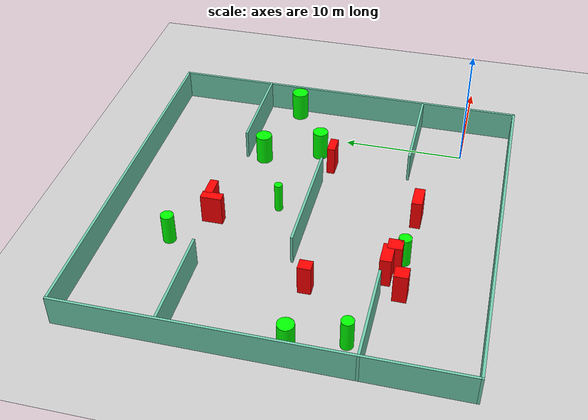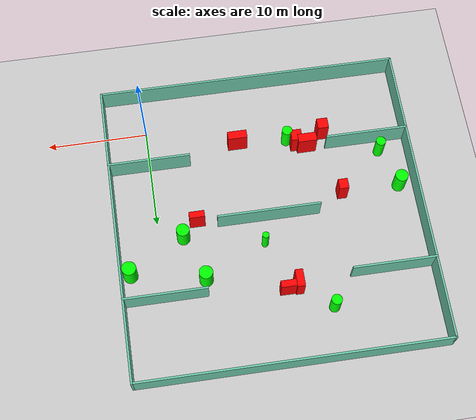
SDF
<sdf version="1.7">
 <world name="default">
  <light name="sun" type="directional">
   <pose>0 0 10 0 -0 0</pose>
   <diffuse>0.8 0.8 0.8 1</diffuse>
   <specular>0.2 0.2 0.2 1</specular>
   <attenuation>
    <range>1000</range>
    <constant>0.9</constant>
    <linear>0.01</linear>
    <quadratic>0.001</quadratic>
   </attenuation>
   <direction>-0.5 0.1 -0.9</direction>
   <spot><inner_angle>0</inner_angle><outer_angle>0</outer_angle><falloff>0</falloff></spot>
  </light>
  <model name="ground_plane">
   <static>1</static>
   <link name="link">
    <collision name="collision">
     <geometry><plane><normal>0 0 1</normal><size>100 100</size></plane></geometry>
     <surface>
      <contact><collide_bitmask>65535</collide_bitmask></contact>
      <friction><ode><mu>100</mu><mu2>50</mu2></ode></friction>
     </surface>
    </collision>
    <visual name="visual">
     <cast_shadows>0</cast_shadows>
     <geometry><plane><normal>0 0 1</normal><size>100 100</size></plane></geometry>
     <material>
      <script><uri>file://media/materials/scripts/gazebo.material</uri><name>Gazebo/Grey</name></script>
     </material>
    </visual>
   </link>
  </model>
  <gravity>0 0 -9.8</gravity>
  <magnetic_field>6e-06 2.3e-05 -4.2e-05</magnetic_field>
  <atmosphere type="adiabatic"/>
  <physics type="ode">
   <max_step_size>0.001</max_step_size>
   <real_time_factor>1</real_time_factor>
   <real_time_update_rate>1000</real_time_update_rate>
  </physics>
  <scene><ambient>0.4 0.4 0.4 1</ambient><background>0.7 0.7 0.7 1</background><shadows>1</shadows></scene>
  <spherical_coordinates>
   <surface_model>EARTH_WGS84</surface_model>
   <latitude_deg>0</latitude_deg>
   <longitude_deg>0</longitude_deg>
   <elevation>0</elevation>
   <heading_deg>0</heading_deg>
  </spherical_coordinates>
  <model name="my_base_walls">
   <link name="Wall_10">
    <collision name="Wall_10_Collision">
     <geometry><box><size>8.2 0.2 2.5</size></box></geometry>
     <pose>0 0 1.25 0 -0 0</pose>
    </collision>
    <visual name="Wall_10_Visual">
     <pose>0 0 1.25 0 -0 0</pose>
     <geometry><box><size>8.2 0.2 2.5</size></box></geometry>
     <material>
      <script><uri>file://media/materials/scripts/gazebo.material</uri><name>Gazebo/Grey</name></script>
      <ambient>0.435294 0.796078 0.67451 1</ambient>
     </material>
     <meta><layer>0</layer></meta>
    </visual>
    <pose>-11 -7 0 0 -0 0</pose>
   </link>
   <link name="Wall_12">
    <collision name="Wall_12_Collision">
     <geometry><box><size>8.2 0.2 2.5</size></box></geometry>
     <pose>0 0 1.25 0 -0 0</pose>
    </collision>
    <visual name="Wall_12_Visual">
     <pose>0 0 1.25 0 -0 0</pose>
     <geometry><box><size>8.2 0.2 2.5</size></box></geometry>
     <material>
      <script><uri>file://media/materials/scripts/gazebo.material</uri><name>Gazebo/Grey</name></script>
      <ambient>0.435294 0.796078 0.67451 1</ambient>
     </material>
     <meta><layer>0</layer></meta>
    </visual>
    <pose>-11 7 0 0 -0 0</pose>
   </link>
   <link name="Wall_14">
    <collision name="Wall_14_Collision">
     <geometry><box><size>8.2 0.2 2.5</size></box></geometry>
     <pose>0 0 1.25 0 -0 0</pose>
    </collision>
    <visual name="Wall_14_Visual">
     <pose>0 0 1.25 0 -0 0</pose>
     <geometry><box><size>8.2 0.2 2.5</size></box></geometry>
     <material>
      <script><uri>file://media/materials/scripts/gazebo.material</uri><name>Gazebo/Grey</name></script>
      <ambient>0.435294 0.796078 0.67451 1</ambient>
     </material>
     <meta><layer>0</layer></meta>
    </visual>
    <pose>11 7 0 0 -0 3.14159</pose>
   </link>
   <link name="Wall_16">
    <collision name="Wall_16_Collision">
     <geometry><box><size>10.2 0.2 2.5</size></box></geometry>
     <pose>0 0 1.25 0 -0 0</pose>
    </collision>
    <visual name="Wall_16_Visual">
     <pose>0 0 1.25 0 -0 0</pose>
     <geometry><box><size>10.2 0.2 2.5</size></box></geometry>
     <material>
      <script><uri>file://media/materials/scripts/gazebo.material</uri><name>Gazebo/Grey</name></script>
      <ambient>0.435294 0.796078 0.67451 1</ambient>
     </material>
     <meta><layer>0</layer></meta>
    </visual>
    <pose>0 0 0 0 -0 3.14159</pose>
   </link>
   <link name="Wall_2">
    <collision name="Wall_2_Collision">
     <geometry><box><size>30.2 0.2 2.5</size></box></geometry>
     <pose>0 0 1.25 0 -0 0</pose>
    </collision>
    <visual name="Wall_2_Visual">
     <pose>0 0 1.25 0 -0 0</pose>
     <geometry><box><size>30.2 0.2 2.5</size></box></geometry>
     <material>
      <script><uri>file://media/materials/scripts/gazebo.material</uri><name>Gazebo/Grey</name></script>
      <ambient>0.435294 0.796078 0.67451 1</ambient>
     </material>
     <meta><layer>0</layer></meta>
    </visual>
    <pose>0 -15 0 0 -0 3.14159</pose>
   </link>
   <link name="Wall_3">
    <collision name="Wall_3_Collision">
     <geometry><box><size>30.2 0.2 2.5</size></box></geometry>
     <pose>0 0 1.25 0 -0 0</pose>
    </collision>
    <visual name="Wall_3_Visual">
     <pose>0 0 1.25 0 -0 0</pose>
     <geometry><box><size>30.2 0.2 2.5</size></box></geometry>
     <material>
      <script><uri>file://media/materials/scripts/gazebo.material</uri><name>Gazebo/Grey</name></script>
      <ambient>0.435294 0.796078 0.67451 1</ambient>
     </material>
     <meta><layer>0</layer></meta>
    </visual>
    <pose>-15 0 0 0 -0 1.5708</pose>
   </link>
   <link name="Wall_4">
    <collision name="Wall_4_Collision">
     <geometry><box><size>30.2 0.2 2.5</size></box></geometry>
     <pose>0 0 1.25 0 -0 0</pose>
    </collision>
    <visual name="Wall_4_Visual">
     <pose>0 0 1.25 0 -0 0</pose>
     <geometry><box><size>30.2 0.2 2.5</size></box></geometry>
     <material>
      <script><uri>file://media/materials/scripts/gazebo.material</uri><name>Gazebo/Grey</name></script>
      <ambient>0.435294 0.796078 0.67451 1</ambient>
     </material>
     <meta><layer>0</layer></meta>
    </visual>
    <pose>0 15 0 0 -0 0</pose>
   </link>
   <link name="Wall_6">
    <collision name="Wall_6_Collision">
     <geometry><box><size>30.2 0.2 2.5</size></box></geometry>
     <pose>0 0 1.25 0 -0 0</pose>
    </collision>
    <visual name="Wall_6_Visual">
     <pose>0 0 1.25 0 -0 0</pose>
     <geometry><box><size>30.2 0.2 2.5</size></box></geometry>
     <material>
      <script><uri>file://media/materials/scripts/gazebo.material</uri><name>Gazebo/Grey</name></script>
      <ambient>0.435294 0.796078 0.67451 1</ambient>
     </material>
     <meta><layer>0</layer></meta>
    </visual>
    <pose>15 0 0 0 -0 1.5708</pose>
   </link>
   <link name="Wall_8">
    <collision name="Wall_8_Collision">
     <geometry><box><size>8.2 0.2 2.5</size></box></geometry>
     <pose>0 0 1.25 0 -0 0</pose>
    </collision>
    <visual name="Wall_8_Visual">
     <pose>0 0 1.25 0 -0 0</pose>
     <geometry><box><size>8.2 0.2 2.5</size></box></geometry>
     <material>
      <script><uri>file://media/materials/scripts/gazebo.material</uri><name>Gazebo/Grey</name></script>
      <ambient>0.435294 0.796078 0.67451 1</ambient>
     </material>
     <meta><layer>0</layer></meta>
    </visual>
    <pose>11 -7 0 0 -0 3.14159</pose>
   </link>
   <static>1</static>
   <pose>-11 11 0 0 -0 0</pose>
  </model>
  <model name="cylinder1">
   <static>1</static>
   <link name="link">
    <inertial>
     <mass>1</mass>
     <inertia><ixx>0.5</ixx><ixy>0</ixy><ixz>0</ixz><iyy>0.5</iyy><iyz>0</iyz><izz>1</izz></inertia>
    </inertial>
    <collision name="collision">
     <geometry><cylinder><radius>0.636498720481179</radius><length>2.5</length></cylinder></geometry>
    </collision>
    <visual name="visual">
     <geometry><cylinder><radius>0.636498720481179</radius><length>2.5</length></cylinder></geometry>
     <material>
      <ambient>0 1 0 1</ambient>
      <diffuse>0 1 0 1</diffuse>
      <specular>0.1 0.1 0.1 1</specular>
      <emissive>0 0 0 0</emissive>
     </material>
    </visual>
   </link>
   <pose>-2.411216339836688 11.914152871384841 1.25 0 0 0</pose>
  </model>
  <model name="cylinder2">
   <static>1</static>
   <link name="link">
    <inertial>
     <mass>1</mass>
     <inertia><ixx>0.5</ixx><ixy>0</ixy><ixz>0</ixz><iyy>0.5</iyy><iyz>0</iyz><izz>1</izz></inertia>
    </inertial>
    <collision name="collision">
     <geometry><cylinder><radius>0.3259236256138684</radius><length>2.5</length></cylinder></geometry>
    </collision>
    <visual name="visual">
     <geometry><cylinder><radius>0.3259236256138684</radius><length>2.5</length></cylinder></geometry>
     <material>
      <ambient>0 1 0 1</ambient>
      <diffuse>0 1 0 1</diffuse>
      <specular>0.1 0.1 0.1 1</specular>
      <emissive>0 0 0 0</emissive>
     </material>
    </visual>
   </link>
   <pose>-10.242868053771627 13.568224415973805 1.25 0 0 0</pose>
  </model>
  <model name="cylinder3">
   <static>1</static>
   <link name="link">
    <inertial>
     <mass>1</mass>
     <inertia><ixx>0.5</ixx><ixy>0</ixy><ixz>0</ixz><iyy>0.5</iyy><iyz>0</iyz><izz>1</izz></inertia>
    </inertial>
    <collision name="collision">
     <geometry><cylinder><radius>0.5176408508079428</radius><length>2.5</length></cylinder></geometry>
    </collision>
    <visual name="visual">
     <geometry><cylinder><radius>0.5176408508079428</radius><length>2.5</length></cylinder></geometry>
     <material>
      <ambient>0 1 0 1</ambient>
      <diffuse>0 1 0 1</diffuse>
      <specular>0.1 0.1 0.1 1</specular>
      <emissive>0 0 0 0</emissive>
     </material>
    </visual>
   </link>
   <pose>-15.800730716564015 20.89428741965672 1.25 0 0 0</pose>
  </model>
  <model name="cylinder4">
   <static>1</static>
   <link name="link">
    <inertial>
     <mass>1</mass>
     <inertia><ixx>0.5</ixx><ixy>0</ixy><ixz>0</ixz><iyy>0.5</iyy><iyz>0</iyz><izz>1</izz></inertia>
    </inertial>
    <collision name="collision">
     <geometry><cylinder><radius>0.4845698267996583</radius><length>2.5</length></cylinder></geometry>
    </collision>
    <visual name="visual">
     <geometry><cylinder><radius>0.4845698267996583</radius><length>2.5</length></cylinder></geometry>
     <material>
      <ambient>0 1 0 1</ambient>
      <diffuse>0 1 0 1</diffuse>
      <specular>0.1 0.1 0.1 1</specular>
      <emissive>0 0 0 0</emissive>
     </material>
    </visual>
   </link>
   <pose>-23.205842157219614 5.273185494477175 1.25 0 0 0</pose>
  </model>
  <model name="cylinder5">
   <static>1</static>
   <link name="link">
    <inertial>
     <mass>1</mass>
     <inertia><ixx>0.5</ixx><ixy>0</ixy><ixz>0</ixz><iyy>0.5</iyy><iyz>0</iyz><izz>1</izz></inertia>
    </inertial>
    <collision name="collision">
     <geometry><cylinder><radius>0.6967206470326086</radius><length>2.5</length></cylinder></geometry>
    </collision>
    <visual name="visual">
     <geometry><cylinder><radius>0.6967206470326086</radius><length>2.5</length></cylinder></geometry>
     <material>
      <ambient>0 1 0 1</ambient>
      <diffuse>0 1 0 1</diffuse>
      <specular>0.1 0.1 0.1 1</specular>
      <emissive>0 0 0 0</emissive>
     </material>
    </visual>
   </link>
   <pose>3.1174313810031435 15.065133735084071 1.25 0 0 0</pose>
  </model>
  <model name="cylinder6">
   <static>1</static>
   <link name="link">
    <inertial>
     <mass>1</mass>
     <inertia><ixx>0.5</ixx><ixy>0</ixy><ixz>0</ixz><iyy>0.5</iyy><iyz>0</iyz><izz>1</izz></inertia>
    </inertial>
    <collision name="collision">
     <geometry><cylinder><radius>0.6359386333407981</radius><length>2.5</length></cylinder></geometry>
    </collision>
    <visual name="visual">
     <geometry><cylinder><radius>0.6359386333407981</radius><length>2.5</length></cylinder></geometry>
     <material>
      <ambient>0 1 0 1</ambient>
      <diffuse>0 1 0 1</diffuse>
      <specular>0.1 0.1 0.1 1</specular>
      <emissive>0 0 0 0</emissive>
     </material>
    </visual>
   </link>
   <pose>-24.476697213895324 9.265067049409915 1.25 0 0 0</pose>
  </model>
  <model name="cylinder7">
   <static>1</static>
   <link name="link">
    <inertial>
     <mass>1</mass>
     <inertia><ixx>0.5</ixx><ixy>0</ixy><ixz>0</ixz><iyy>0.5</iyy><iyz>0</iyz><izz>1</izz></inertia>
    </inertial>
    <collision name="collision">
     <geometry><cylinder><radius>0.6712081830879499</radius><length>2.5</length></cylinder></geometry>
    </collision>
    <visual name="visual">
     <geometry><cylinder><radius>0.6712081830879499</radius><length>2.5</length></cylinder></geometry>
     <material>
      <ambient>0 1 0 1</ambient>
      <diffuse>0 1 0 1</diffuse>
      <specular>0.1 0.1 0.1 1</specular>
      <emissive>0 0 0 0</emissive>
     </material>
    </visual>
   </link>
   <pose>-4.055477282428363 16.48546122716063 1.25 0 0 0</pose>
  </model>
  <model name="cylinder8">
   <static>1</static>
   <link name="link">
    <inertial>
     <mass>1</mass>
     <inertia><ixx>0.5</ixx><ixy>0</ixy><ixz>0</ixz><iyy>0.5</iyy><iyz>0</iyz><izz>1</izz></inertia>
    </inertial>
    <collision name="collision">
     <geometry><cylinder><radius>0.5010776036155569</radius><length>2.5</length></cylinder></geometry>
    </collision>
    <visual name="visual">
     <geometry><cylinder><radius>0.5010776036155569</radius><length>2.5</length></cylinder></geometry>
     <material>
      <ambient>0 1 0 1</ambient>
      <diffuse>0 1 0 1</diffuse>
      <specular>0.1 0.1 0.1 1</specular>
      <emissive>0 0 0 0</emissive>
     </material>
    </visual>
   </link>
   <pose>-14.116477216662943 2.756456341346654 1.25 0 0 0</pose>
  </model>
  <model name="box1">
   <static>1</static>
   <link name="link">
    <inertial>
     <mass>1</mass>
     <inertia><ixx>0.083</ixx><ixy>0</ixy><ixz>0</ixz><iyy>0.083</iyy><iyz>0</iyz><izz>0.083</izz></inertia>
    </inertial>
    <collision name="collision">
     <geometry><box><size>0.9411390073545525 1.026688906326614 2.5</size></box></geometry>
    </collision>
    <visual name="visual">
     <geometry><box><size>0.9411390073545525 1.026688906326614 2.5</size></box></geometry>
     <material>
      <ambient>1 0 0 1</ambient>
      <diffuse>1 0 0 1</diffuse>
      <specular>0.1 0.1 0.1 1</specular>
      <emissive>0 0 0 0</emissive>
     </material>
    </visual>
    <sensor name="my_contact" type="contact">
     <contact><collision>box_collision</collision><topic>__default_topic__</topic></contact>
    </sensor>
   </link>
   <pose>-18.628570453779762 9.324366324867071 1.25 0 0 0</pose>
  </model>
  <model name="box2">
   <static>1</static>
   <link name="link">
    <inertial>
     <mass>1</mass>
     <inertia><ixx>0.083</ixx><ixy>0</ixy><ixz>0</ixz><iyy>0.083</iyy><iyz>0</iyz><izz>0.083</izz></inertia>
    </inertial>
    <collision name="collision">
     <geometry><box><size>1.8766531306022287 0.8853086188600077 2.5</size></box></geometry>
    </collision>
    <visual name="visual">
     <geometry><box><size>1.8766531306022287 0.8853086188600077 2.5</size></box></geometry>
     <material>
      <ambient>1 0 0 1</ambient>
      <diffuse>1 0 0 1</diffuse>
      <specular>0.1 0.1 0.1 1</specular>
      <emissive>0 0 0 0</emissive>
     </material>
    </visual>
    <sensor name="my_contact" type="contact">
     <contact><collision>box_collision</collision><topic>__default_topic__</topic></contact>
    </sensor>
   </link>
   <pose>-15.986294123082157 3.784094473950205 1.25 0 0 0</pose>
  </model>
  <model name="box3">
   <static>1</static>
   <link name="link">
    <inertial>
     <mass>1</mass>
     <inertia><ixx>0.083</ixx><ixy>0</ixy><ixz>0</ixz><iyy>0.083</iyy><iyz>0</iyz><izz>0.083</izz></inertia>
    </inertial>
    <collision name="collision">
     <geometry><box><size>0.7621091949953518 1.6993384922255288 2.5</size></box></geometry>
    </collision>
    <visual name="visual">
     <geometry><box><size>0.7621091949953518 1.6993384922255288 2.5</size></box></geometry>
     <material>
      <ambient>1 0 0 1</ambient>
      <diffuse>1 0 0 1</diffuse>
      <specular>0.1 0.1 0.1 1</specular>
      <emissive>0 0 0 0</emissive>
     </material>
    </visual>
    <sensor name="my_contact" type="contact">
     <contact><collision>box_collision</collision><topic>__default_topic__</topic></contact>
    </sensor>
   </link>
   <pose>-12.76343506227122 18.287585692547847 1.25 0 0 0</pose>
  </model>
  <model name="box4">
   <static>1</static>
   <link name="link">
    <inertial>
     <mass>1</mass>
     <inertia><ixx>0.083</ixx><ixy>0</ixy><ixz>0</ixz><iyy>0.083</iyy><iyz>0</iyz><izz>0.083</izz></inertia>
    </inertial>
    <collision name="collision">
     <geometry><box><size>1.068465221905 1.1493377898410628 2.5</size></box></geometry>
    </collision>
    <visual name="visual">
     <geometry><box><size>1.068465221905 1.1493377898410628 2.5</size></box></geometry>
     <material>
      <ambient>1 0 0 1</ambient>
      <diffuse>1 0 0 1</diffuse>
      <specular>0.1 0.1 0.1 1</specular>
      <emissive>0 0 0 0</emissive>
     </material>
    </visual>
    <sensor name="my_contact" type="contact">
     <contact><collision>box_collision</collision><topic>__default_topic__</topic></contact>
    </sensor>
   </link>
   <pose>-14.95197431702909 3.357744654144584 1.25 0 0 0</pose>
  </model>
  <model name="box5">
   <static>1</static>
   <link name="link">
    <inertial>
     <mass>1</mass>
     <inertia><ixx>0.083</ixx><ixy>0</ixy><ixz>0</ixz><iyy>0.083</iyy><iyz>0</iyz><izz>0.083</izz></inertia>
    </inertial>
    <collision name="collision">
     <geometry><box><size>1.9207012933492709 0.8327819880923256 2.5</size></box></geometry>
    </collision>
    <visual name="visual">
     <geometry><box><size>1.9207012933492709 0.8327819880923256 2.5</size></box></geometry>
     <material>
      <ambient>1 0 0 1</ambient>
      <diffuse>1 0 0 1</diffuse>
      <specular>0.1 0.1 0.1 1</specular>
      <emissive>0 0 0 0</emissive>
     </material>
    </visual>
    <sensor name="my_contact" type="contact">
     <contact><collision>box_collision</collision><topic>__default_topic__</topic></contact>
    </sensor>
   </link>
   <pose>-9.084734837803179 2.512521066380259 1.25 0 0 0</pose>
  </model>
  <model name="box6">
   <static>1</static>
   <link name="link">
    <inertial>
     <mass>1</mass>
     <inertia><ixx>0.083</ixx><ixy>0</ixy><ixz>0</ixz><iyy>0.083</iyy><iyz>0</iyz><izz>0.083</izz></inertia>
    </inertial>
    <collision name="collision">
     <geometry><box><size>1.0802591117576417 1.0823527776721722 2.5</size></box></geometry>
    </collision>
    <visual name="visual">
     <geometry><box><size>1.0802591117576417 1.0823527776721722 2.5</size></box></geometry>
     <material>
      <ambient>1 0 0 1</ambient>
      <diffuse>1 0 0 1</diffuse>
      <specular>0.1 0.1 0.1 1</specular>
      <emissive>0 0 0 0</emissive>
     </material>
    </visual>
    <sensor name="my_contact" type="contact">
     <contact><collision>box_collision</collision><topic>__default_topic__</topic></contact>
    </sensor>
   </link>
   <pose>-17.779638380475987 2.451811819714332 1.25 0 0 0</pose>
  </model>
  <model name="box7">
   <static>1</static>
   <link name="link">
    <inertial>
     <mass>1</mass>
     <inertia><ixx>0.083</ixx><ixy>0</ixy><ixz>0</ixz><iyy>0.083</iyy><iyz>0</iyz><izz>0.083</izz></inertia>
    </inertial>
    <collision name="collision">
     <geometry><box><size>1.5274017675899974 0.6527370857893462 2.5</size></box></geometry>
    </collision>
    <visual name="visual">
     <geometry><box><size>1.5274017675899974 0.6527370857893462 2.5</size></box></geometry>
     <material>
      <ambient>1 0 0 1</ambient>
      <diffuse>1 0 0 1</diffuse>
      <specular>0.1 0.1 0.1 1</specular>
      <emissive>0 0 0 0</emissive>
     </material>
    </visual>
    <sensor name="my_contact" type="contact">
     <contact><collision>box_collision</collision><topic>__default_topic__</topic></contact>
    </sensor>
   </link>
   <pose>-3.9517846567680905 10.499280785591113 1.25 0 0 0</pose>
  </model>
  <model name="box8">
   <static>1</static>
   <link name="link">
    <inertial>
     <mass>1</mass>
     <inertia><ixx>0.083</ixx><ixy>0</ixy><ixz>0</ixz><iyy>0.083</iyy><iyz>0</iyz><izz>0.083</izz></inertia>
    </inertial>
    <collision name="collision">
     <geometry><box><size>1.5683016022443563 0.6721064045371901 2.5</size></box></geometry>
    </collision>
    <visual name="visual">
     <geometry><box><size>1.5683016022443563 0.6721064045371901 2.5</size></box></geometry>
     <material>
      <ambient>1 0 0 1</ambient>
      <diffuse>1 0 0 1</diffuse>
      <specular>0.1 0.1 0.1 1</specular>
      <emissive>0 0 0 0</emissive>
     </material>
    </visual>
    <sensor name="my_contact" type="contact">
     <contact><collision>box_collision</collision><topic>__default_topic__</topic></contact>
    </sensor>
   </link>
   <pose>-11.659244042631206 18.685589640596987 1.25 0 0 0</pose>
  </model>
 </world>
</sdf>
